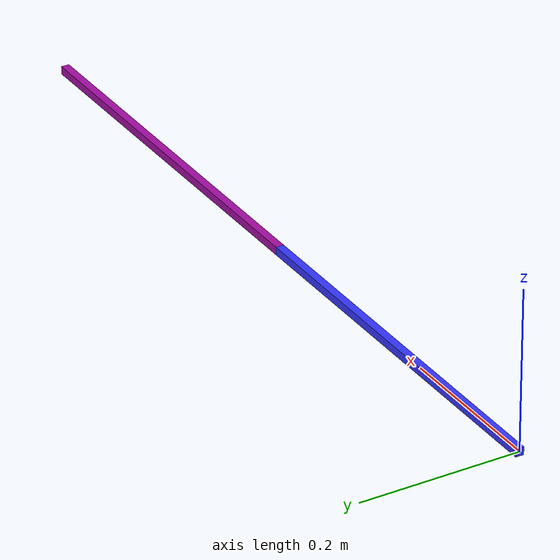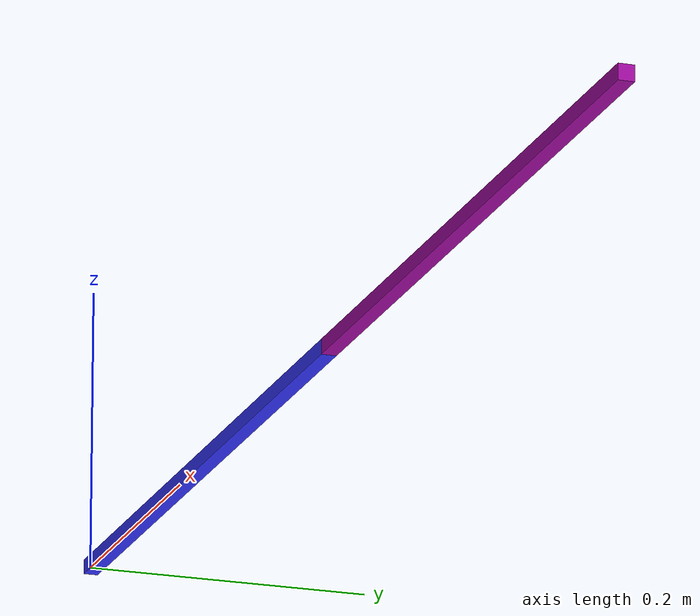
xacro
<?xml version="1.0"?>
<robot name="robot">

    <material name="white">
        <color rgba="1 1 1 1" />
    </material>

    <material name="blue">
        <color rgba="0.2 0.2 1 1"/>
    </material>

    <material name="purple">
        <color rgba="0.639 0.043 0.639 1"/>
    </material>

    <link name="base_link" />

    <joint name="arm1_joint" type="continuous">
        <parent link="base_link"/>
        <child link="arm1"/>
        <origin xyz="0 0 0" rpy="0 0 0" />
        <axis xyz="0 0 1"/>
    </joint>

    <link name="arm1">
        <visual>
            <origin xyz="0.25 0 0" rpy="0 0 0" />
            <geometry>
                <box size="0.5 0.01 0.01"/>
            </geometry>
            <material name="blue"/>
        </visual>
        <collision>
            <origin xyz="0.25 0 0" rpy="0 0 0" />
            <geometry>
                <box size="0.5 0.01 0.01"/>
            </geometry>
        </collision>
    </link>

    <joint name="arm2_joint" type="continuous">
        <parent link="arm1"/>
        <child link="arm2"/>
        <origin xyz="0.5 0 0" rpy="0 0 0" />
        <axis xyz="0 0 1"/>
    </joint>

     <link name="arm2">
        <visual>
            <origin xyz="0.25 0 0" rpy="0 0 0" />
            <geometry>
                <box size="0.5 0.01 0.01"/>
            </geometry>
            <material name="purple"/>
        </visual>
        <collision>
            <origin xyz="0.25 0 0" rpy="0 0 0" />
            <geometry>
                <box size="0.5 0.01 0.01"/>
            </geometry>
        </collision>
    </link>

    <link name="ef"/>
    <joint name="ef_joint" type="continuous">
        <parent link="arm2"/>
        <child link="ef"/>
        <origin xyz="0.5 0 0" rpy="0 0 0" />
        <axis xyz="0 0 1"/>
    </joint>

</robot>
